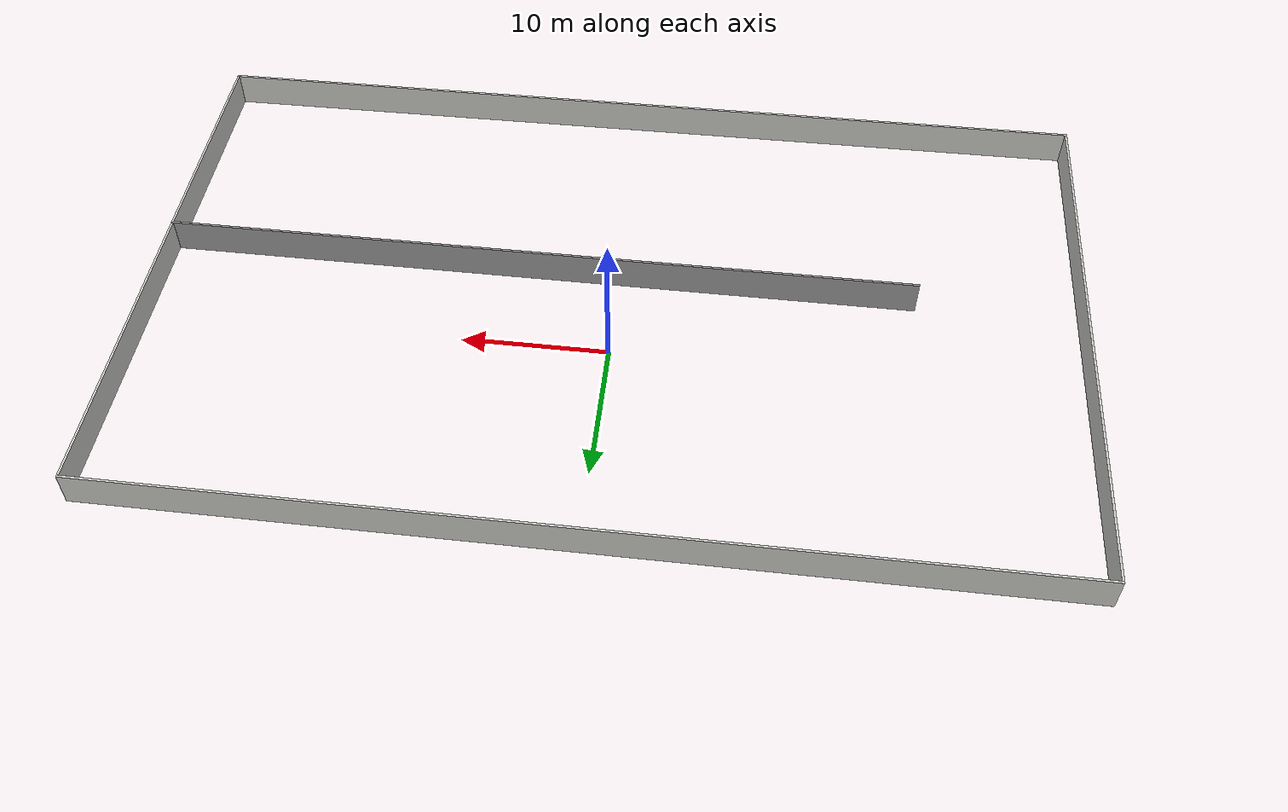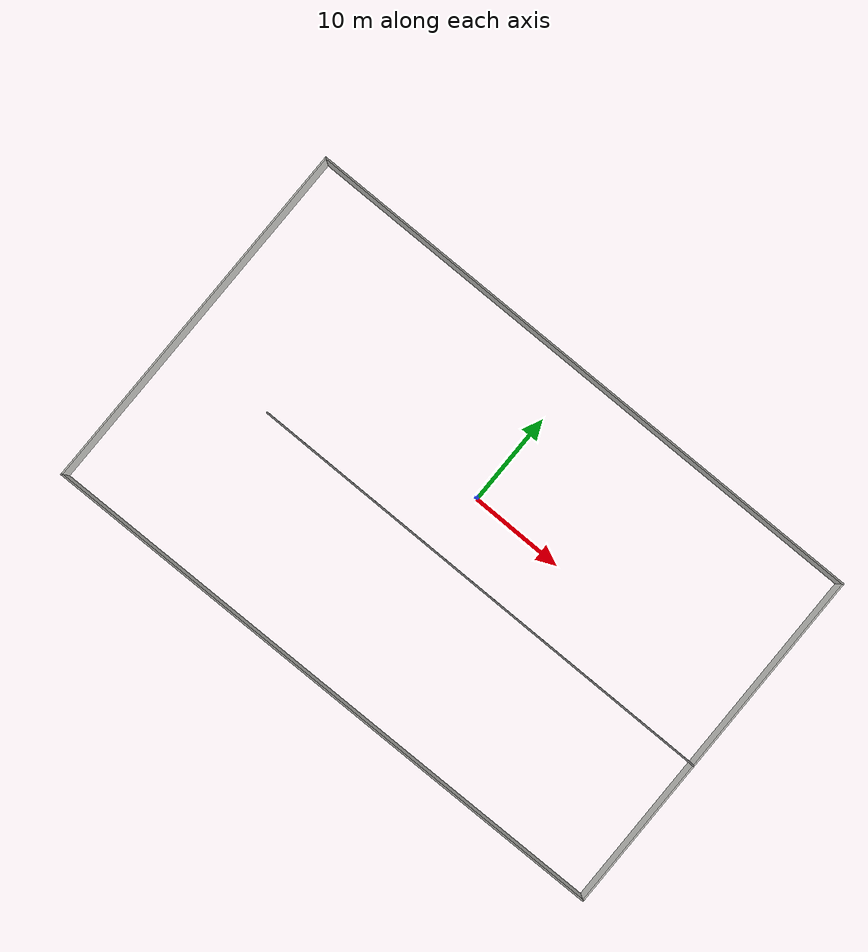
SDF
<?xml version='1.0'?>
<sdf version='1.7'>
  <model name='room105'>
    <pose>0.055666 -3.71848 0 0 -0 0</pose>
    <link name='Wall_0'>
      <collision name='Wall_0_Collision'>
        <geometry>
          <box>
            <size>39 0.15 2.5</size>
          </box>
        </geometry>
        <pose>0 0 1.25 0 -0 0</pose>
      </collision>
      <visual name='Wall_0_Visual'>
        <pose>0 0 1.25 0 -0 0</pose>
        <geometry>
          <box>
            <size>39 0.15 2.5</size>
          </box>
        </geometry>
        <material>
          <script>
            <uri>file://media/materials/scripts/gazebo.material</uri>
            <name>Gazebo/CeilingTiled</name>
          </script>
          <ambient>1 1 1 1</ambient>
        </material>
        <meta>
          <layer>0</layer>
        </meta>
      </visual>
      <pose>-31.675 0.003231 0 0 -0 -1.5708</pose>
    </link>
    <link name='Wall_1'>
      <collision name='Wall_1_Collision'>
        <geometry>
          <box>
            <size>63.5013 0.15 2.5</size>
          </box>
        </geometry>
        <pose>0 0 1.25 0 -0 0</pose>
      </collision>
      <visual name='Wall_1_Visual'>
        <pose>0 0 1.25 0 -0 0</pose>
        <geometry>
          <box>
            <size>63.5013 0.15 2.5</size>
          </box>
        </geometry>
        <material>
          <script>
            <uri>file://media/materials/scripts/gazebo.material</uri>
            <name>Gazebo/CeilingTiled</name>
          </script>
          <ambient>1 1 1 1</ambient>
        </material>
        <meta>
          <layer>0</layer>
        </meta>
      </visual>
      <pose>1e-06 -19.259 0 0 -0 0.007707</pose>
    </link>
    <link name='Wall_2'>
      <collision name='Wall_2_Collision'>
        <geometry>
          <box>
            <size>38.5873 0.15 2.5</size>
          </box>
        </geometry>
        <pose>0 0 1.25 0 -0 0</pose>
      </collision>
      <visual name='Wall_2_Visual'>
        <pose>0 0 1.25 0 -0 0</pose>
        <geometry>
          <box>
            <size>38.5873 0.15 2.5</size>
          </box>
        </geometry>
        <material>
          <script>
            <uri>file://media/materials/scripts/gazebo.material</uri>
            <name>Gazebo/CeilingTiled</name>
          </script>
          <ambient>1 1 1 1</ambient>
        </material>
        <meta>
          <layer>0</layer>
        </meta>
      </visual>
      <pose>31.675 0.203713 0 0 -0 1.5708</pose>
    </link>
    <link name='Wall_3'>
      <collision name='Wall_3_Collision'>
        <geometry>
          <box>
            <size>63.5 0.15 2.5</size>
          </box>
        </geometry>
        <pose>0 0 1.25 0 -0 0</pose>
      </collision>
      <visual name='Wall_3_Visual'>
        <pose>0 0 1.25 0 -0 0</pose>
        <geometry>
          <box>
            <size>63.5 0.15 2.5</size>
          </box>
        </geometry>
        <material>
          <script>
            <uri>file://media/materials/scripts/gazebo.material</uri>
            <name>Gazebo/CeilingTiled</name>
          </script>
          <ambient>1 1 1 1</ambient>
        </material>
        <meta>
          <layer>0</layer>
        </meta>
      </visual>
      <pose>1e-06 19.5037 0 0 -0 3.14159</pose>
    </link>
    <link name='Wall_5'>
      <collision name='Wall_5_Collision'>
        <geometry>
          <box>
            <size>52.25 0.15 2.5</size>
          </box>
        </geometry>
        <pose>0 0 1.25 0 -0 0</pose>
      </collision>
      <visual name='Wall_5_Visual'>
        <pose>0 0 1.25 0 -0 0</pose>
        <geometry>
          <box>
            <size>52.25 0.15 2.5</size>
          </box>
        </geometry>
        <material>
          <script>
            <uri>file://media/materials/scripts/gazebo.material</uri>
            <name>Gazebo/Grey</name>
          </script>
          <ambient>1 1 1 1</ambient>
        </material>
        <meta>
          <layer>0</layer>
        </meta>
      </visual>
      <pose>5.58068 -2.65665 0 0 -0 0</pose>
    </link>
    <static>1</static>
  </model>
</sdf>
